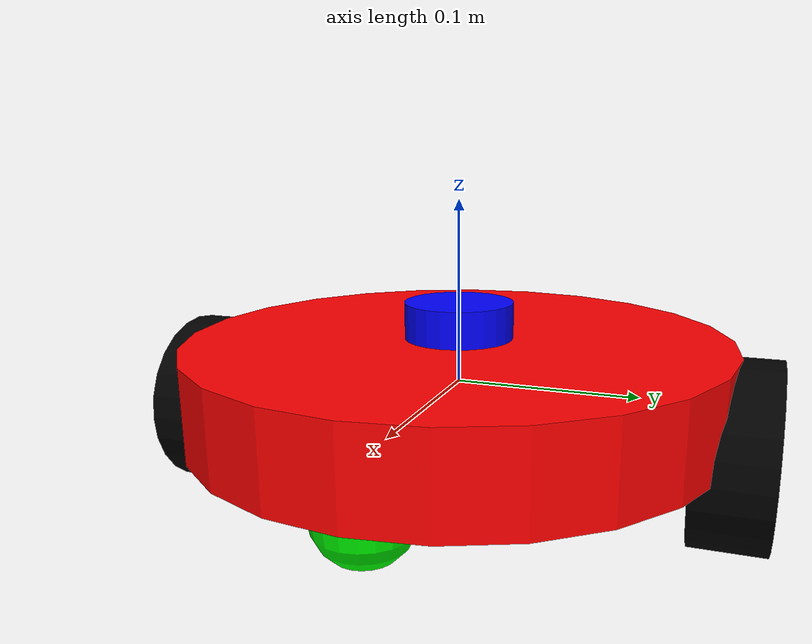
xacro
<?xml version="1.0"?>
<robot xmlns:xacro="http://www.ros.org/wiki/xacro" name="mobile_robot">

  <xacro:property name="body_radius" value="0.15"/>
  <xacro:property name="body_length" value="0.05"/>
  <xacro:property name="wheel_radius" value="0.05"/>
  <xacro:property name="wheel_width" value="0.04"/>
  <xacro:property name="wheel_offset_x" value="0.0"/>
  <xacro:property name="wheel_offset_y" value="${body_radius}"/>
  <xacro:property name="wheel_offset_z" value="-${body_length/2}"/>
  <xacro:property name="caster_radius" value="0.025"/>
  <xacro:property name="caster_offset_x" value="${body_radius - caster_radius}"/>
  <xacro:property name="caster_offset_z" value="-${body_length/2}"/>

  <material name="red">
    <color rgba="1.0 0.0 0.0 1.0"/>
  </material>
  <material name="green">
    <color rgba="0.0 1.0 0.0 1.0"/>
  </material>
  <material name="blue">
    <color rgba="0.0 0.0 1.0 1.0"/>
  </material>
  <material name="black">
    <color rgba="0.0 0.0 0.0 1.0"/>
  </material>

  <link name="base_link">
    <visual>
      <geometry>
        <cylinder length="${body_length}" radius="${body_radius}"/>
      </geometry>
      <material name="red"/>
    </visual>
    <collision>
      <geometry>
        <cylinder length="${body_length}" radius="${body_radius}"/>
      </geometry>
    </collision>
    <inertial>
      <mass value="1.0"/>
      <inertia ixx="0.1" ixy="0.0" ixz="0.0" iyy="0.1" iyz="0.0" izz="0.1"/>
    </inertial>
  </link>

  <link name="left_wheel">
    <visual>
      <geometry>
        <cylinder length="${wheel_width}" radius="${wheel_radius}"/>
      </geometry>
      <origin xyz="0 0 0" rpy="${pi/2} 0 0"/>
      <material name="black"/>
    </visual>
    <collision>
      <geometry>
        <cylinder length="${wheel_width}" radius="${wheel_radius}"/>
      </geometry>
      <origin xyz="0 0 0" rpy="${pi/2} 0 0"/>
    </collision>
    <inertial>
      <mass value="0.5"/>
      <inertia ixx="0.01" ixy="0.0" ixz="0.0" iyy="0.01" iyz="0.0" izz="0.01"/>
    </inertial>
  </link>

  <joint name="base_to_left_wheel" type="continuous">
    <parent link="base_link"/>
    <child link="left_wheel"/>
    <origin xyz="${wheel_offset_x} ${wheel_offset_y} ${wheel_offset_z}" rpy="0 0 0"/>
    <axis xyz="0 1 0"/>
  </joint>

  <link name="right_wheel">
    <visual>
      <geometry>
        <cylinder length="${wheel_width}" radius="${wheel_radius}"/>
      </geometry>
      <origin xyz="0 0 0" rpy="${pi/2} 0 0"/>
      <material name="black"/>
    </visual>
    <collision>
      <geometry>
        <cylinder length="${wheel_width}" radius="${wheel_radius}"/>
      </geometry>
      <origin xyz="0 0 0" rpy="${pi/2} 0 0"/>
    </collision>
    <inertial>
      <mass value="0.5"/>
      <inertia ixx="0.01" ixy="0.0" ixz="0.0" iyy="0.01" iyz="0.0" izz="0.01"/>
    </inertial>
  </link>

  <joint name="base_to_right_wheel" type="continuous">
    <parent link="base_link"/>
    <child link="right_wheel"/>
    <origin xyz="${wheel_offset_x} ${-wheel_offset_y} ${wheel_offset_z}" rpy="0 0 0"/>
    <axis xyz="0 1 0"/>
  </joint>

  <!-- Caster wheel -->
  <link name="caster_wheel">
    <visual>
      <geometry>
        <sphere radius="${caster_radius}"/>
      </geometry>
      <material name="green"/>
    </visual>
    <collision>
      <geometry>
        <sphere radius="${caster_radius}"/>
      </geometry>
    </collision>
    <inertial>
      <mass value="0.1"/>
      <inertia ixx="0.001" ixy="0.0" ixz="0.0" iyy="0.001" iyz="0.0" izz="0.001"/>
    </inertial>
  </link>

  <joint name="base_to_caster" type="fixed">
    <parent link="base_link"/>
    <child link="caster_wheel"/>
    <origin xyz="${caster_offset_x} 0 ${caster_offset_z}" rpy="0 0 0"/>
  </joint>

  <!-- Lidar sensor -->
  <link name="lidar_link">
    <visual>
      <geometry>
        <cylinder length="0.02" radius="0.03"/>
      </geometry>
      <material name="blue"/>
    </visual>
    <collision>
      <geometry>
        <cylinder length="0.02" radius="0.03"/>
      </geometry>
    </collision>
    <inertial>
      <mass value="0.1"/>
      <inertia ixx="0.001" ixy="0.0" ixz="0.0" iyy="0.001" iyz="0.0" izz="0.001"/>
    </inertial>
  </link>

  <joint name="base_to_lidar" type="fixed">
    <parent link="base_link"/>
    <child link="lidar_link"/>
    <origin xyz="0 0 ${body_length/2 + 0.01}" rpy="0 0 0"/>
  </joint>

  <gazebo>
    <plugin name="differential_drive_controller" filename="libgazebo_ros_diff_drive.so">
      <updateRate>50</updateRate>
      <leftJoint>base_to_left_wheel</leftJoint>
      <rightJoint>base_to_right_wheel</rightJoint>
      <wheelSeparation>${2*wheel_offset_y}</wheelSeparation>
      <wheelDiameter>${2*wheel_radius}</wheelDiameter>
      <wheelAcceleration>1.0</wheelAcceleration>
      <wheelTorque>20</wheelTorque>
      <commandTopic>cmd_vel</commandTopic>
      <odometryTopic>odom</odometryTopic>
      <odometryFrame>odom</odometryFrame>
      <robotBaseFrame>base_link</robotBaseFrame>
      <publishOdomTF>true</publishOdomTF>
      <publishWheelTF>false</publishWheelTF>
      <publishWheelJointState>true</publishWheelJointState>
      <legacyMode>false</legacyMode>
      <odometrySource>world</odometrySource>
    </plugin>
  </gazebo>

  <gazebo reference="lidar_link">
    <sensor type="ray" name="lidar_sensor">
      <pose>0 0 0 0 0 0</pose>
      <visualize>true</visualize>
      <update_rate>10</update_rate>
      <ray>
        <scan>
          <horizontal>
            <samples>360</samples>
            <resolution>1</resolution>
            <min_angle>-3.14159</min_angle>
            <max_angle>3.14159</max_angle>
          </horizontal>
        </scan>
        <range>
          <min>0.1</min>
          <max>10.0</max>
          <resolution>0.01</resolution>
        </range>
        <noise>
          <type>gaussian</type>
          <mean>0.0</mean>
          <stddev>0.01</stddev>
        </noise>
      </ray>
      <plugin name="gazebo_ros_lidar_controller" filename="libgazebo_ros_ray_sensor.so">
        <ros>
          <namespace>/</namespace>
          <remapping>~/out:=scan</remapping>
        </ros>
        <output_type>sensor_msgs/LaserScan</output_type>
        <frame_name>lidar_link</frame_name>
      </plugin>
    </sensor>
  </gazebo>

</robot>
